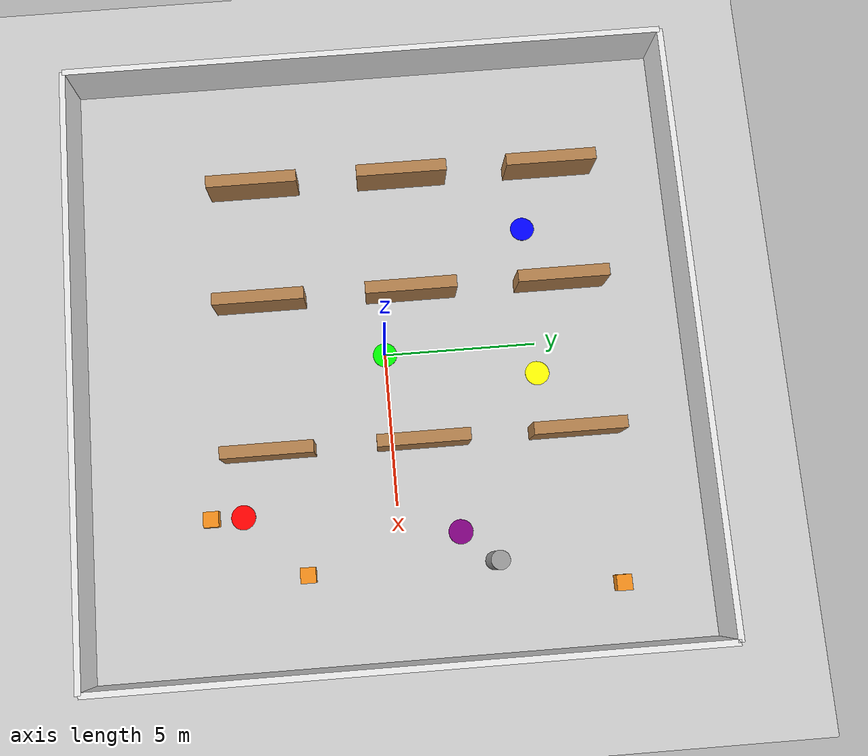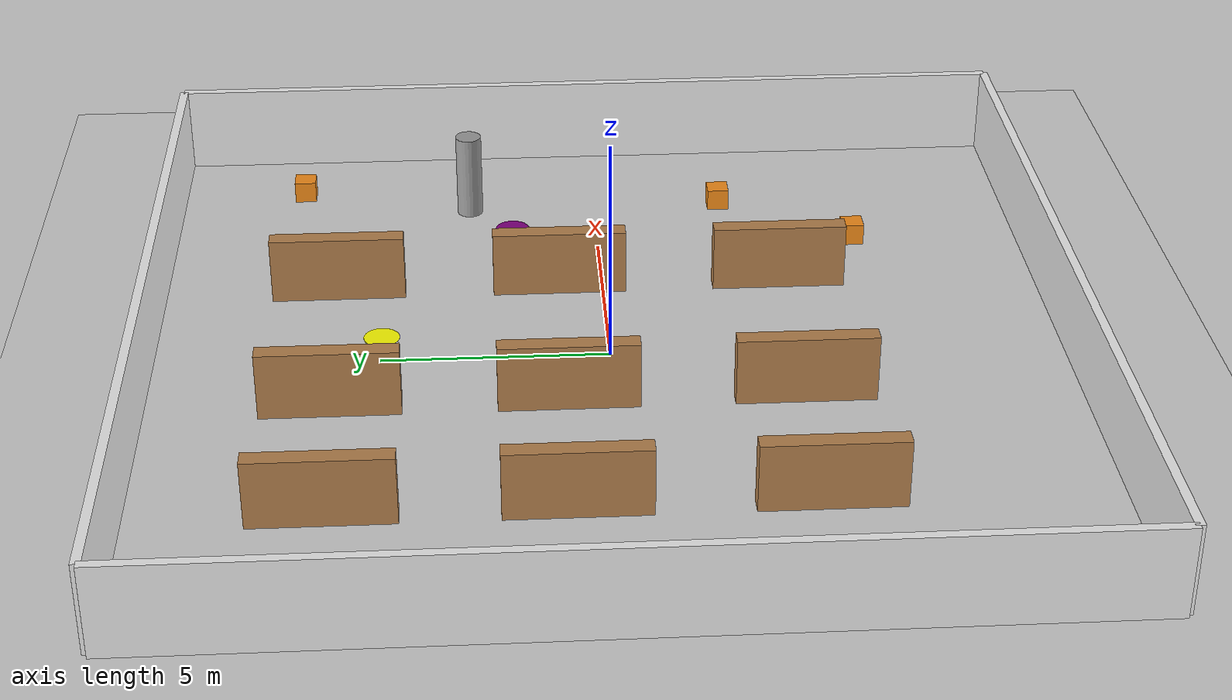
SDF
<?xml version="1.0" ?>
<sdf version="1.6">
  <world name="warehouse_world">

    <!-- Physics -->
    <physics type="ode">
      <real_time_update_rate>1000.0</real_time_update_rate>
      <max_step_size>0.001</max_step_size>
      <real_time_factor>1</real_time_factor>
    </physics>

    <!-- Plugins -->
    <plugin name="gazebo_ros_state" filename="libgazebo_ros_state.so">
      <ros>
        <namespace>/</namespace>
      </ros>
      <update_rate>1.0</update_rate>
    </plugin>

    <!-- Lighting -->
    <light name="sun" type="directional">
      <cast_shadows>true</cast_shadows>
      <pose>0 0 10 0 0 0</pose>
      <diffuse>0.8 0.8 0.8 1</diffuse>
      <specular>0.2 0.2 0.2 1</specular>
      <attenuation>
        <range>1000</range>
        <constant>0.9</constant>
        <linear>0.01</linear>
        <quadratic>0.001</quadratic>
      </attenuation>
      <direction>-0.5 0.1 -0.9</direction>
    </light>

    <!-- Scene -->
    <scene>
      <ambient>0.4 0.4 0.4 1</ambient>
      <background>0.7 0.7 0.7 1</background>
      <shadows>true</shadows>
    </scene>

    <!-- Ground Plane -->
    <model name="ground_plane">
      <static>true</static>
      <link name="link">
        <collision name="collision">
          <geometry>
            <plane>
              <normal>0 0 1</normal>
              <size>50 50</size>
            </plane>
          </geometry>
          <surface>
            <friction>
              <ode>
                <mu>100</mu>
                <mu2>50</mu2>
              </ode>
            </friction>
          </surface>
        </collision>
        <visual name="visual">
          <cast_shadows>false</cast_shadows>
          <geometry>
            <plane>
              <normal>0 0 1</normal>
              <size>50 50</size>
            </plane>
          </geometry>
          <material>
            <script>
              <uri>file://media/materials/scripts/gazebo.material</uri>
              <name>Gazebo/Grey</name>
            </script>
          </material>
        </visual>
      </link>
    </model>

    <!-- Warehouse Outer Walls -->
    <!-- North Wall -->
    <model name="wall_north">
      <static>true</static>
      <pose>0 10 1 0 0 0</pose>
      <link name="link">
        <collision name="collision">
          <geometry><box><size>20 0.2 2</size></box></geometry>
        </collision>
        <visual name="visual">
          <geometry><box><size>20 0.2 2</size></box></geometry>
          <material><script><uri>file://media/materials/scripts/gazebo.material</uri><name>Gazebo/White</name></script></material>
        </visual>
      </link>
    </model>

    <!-- South Wall -->
    <model name="wall_south">
      <static>true</static>
      <pose>0 -10 1 0 0 0</pose>
      <link name="link">
        <collision name="collision">
          <geometry><box><size>20 0.2 2</size></box></geometry>
        </collision>
        <visual name="visual">
          <geometry><box><size>20 0.2 2</size></box></geometry>
          <material><script><uri>file://media/materials/scripts/gazebo.material</uri><name>Gazebo/White</name></script></material>
        </visual>
      </link>
    </model>

    <!-- East Wall -->
    <model name="wall_east">
      <static>true</static>
      <pose>10 0 1 0 0 1.5708</pose>
      <link name="link">
        <collision name="collision">
          <geometry><box><size>20 0.2 2</size></box></geometry>
        </collision>
        <visual name="visual">
          <geometry><box><size>20 0.2 2</size></box></geometry>
          <material><script><uri>file://media/materials/scripts/gazebo.material</uri><name>Gazebo/White</name></script></material>
        </visual>
      </link>
    </model>

    <!-- West Wall -->
    <model name="wall_west">
      <static>true</static>
      <pose>-10 0 1 0 0 1.5708</pose>
      <link name="link">
        <collision name="collision">
          <geometry><box><size>20 0.2 2</size></box></geometry>
        </collision>
        <visual name="visual">
          <geometry><box><size>20 0.2 2</size></box></geometry>
          <material><script><uri>file://media/materials/scripts/gazebo.material</uri><name>Gazebo/White</name></script></material>
        </visual>
      </link>
    </model>

    <!-- Shelf Row 1 (left side) -->
    <model name="shelf_1_1">
      <static>true</static>
      <pose>-6 6 0.75 0 0 0</pose>
      <link name="link">
        <collision name="collision">
          <geometry><box><size>0.4 3.0 1.5</size></box></geometry>
        </collision>
        <visual name="visual">
          <geometry><box><size>0.4 3.0 1.5</size></box></geometry>
          <material><script><uri>file://media/materials/scripts/gazebo.material</uri><name>Gazebo/Wood</name></script></material>
        </visual>
      </link>
    </model>

    <model name="shelf_1_2">
      <static>true</static>
      <pose>-6 1 0.75 0 0 0</pose>
      <link name="link">
        <collision name="collision">
          <geometry><box><size>0.4 3.0 1.5</size></box></geometry>
        </collision>
        <visual name="visual">
          <geometry><box><size>0.4 3.0 1.5</size></box></geometry>
          <material><script><uri>file://media/materials/scripts/gazebo.material</uri><name>Gazebo/Wood</name></script></material>
        </visual>
      </link>
    </model>

    <model name="shelf_1_3">
      <static>true</static>
      <pose>-6 -4 0.75 0 0 0</pose>
      <link name="link">
        <collision name="collision">
          <geometry><box><size>0.4 3.0 1.5</size></box></geometry>
        </collision>
        <visual name="visual">
          <geometry><box><size>0.4 3.0 1.5</size></box></geometry>
          <material><script><uri>file://media/materials/scripts/gazebo.material</uri><name>Gazebo/Wood</name></script></material>
        </visual>
      </link>
    </model>

    <!-- Shelf Row 2 (right side) -->
    <model name="shelf_2_1">
      <static>true</static>
      <pose>-2 6 0.75 0 0 0</pose>
      <link name="link">
        <collision name="collision">
          <geometry><box><size>0.4 3.0 1.5</size></box></geometry>
        </collision>
        <visual name="visual">
          <geometry><box><size>0.4 3.0 1.5</size></box></geometry>
          <material><script><uri>file://media/materials/scripts/gazebo.material</uri><name>Gazebo/Wood</name></script></material>
        </visual>
      </link>
    </model>

    <model name="shelf_2_2">
      <static>true</static>
      <pose>-2 1 0.75 0 0 0</pose>
      <link name="link">
        <collision name="collision">
          <geometry><box><size>0.4 3.0 1.5</size></box></geometry>
        </collision>
        <visual name="visual">
          <geometry><box><size>0.4 3.0 1.5</size></box></geometry>
          <material><script><uri>file://media/materials/scripts/gazebo.material</uri><name>Gazebo/Wood</name></script></material>
        </visual>
      </link>
    </model>

    <model name="shelf_2_3">
      <static>true</static>
      <pose>-2 -4 0.75 0 0 0</pose>
      <link name="link">
        <collision name="collision">
          <geometry><box><size>0.4 3.0 1.5</size></box></geometry>
        </collision>
        <visual name="visual">
          <geometry><box><size>0.4 3.0 1.5</size></box></geometry>
          <material><script><uri>file://media/materials/scripts/gazebo.material</uri><name>Gazebo/Wood</name></script></material>
        </visual>
      </link>
    </model>

    <!-- Shelf Row 3 -->
    <model name="shelf_3_1">
      <static>true</static>
      <pose>3 6 0.75 0 0 0</pose>
      <link name="link">
        <collision name="collision">
          <geometry><box><size>0.4 3.0 1.5</size></box></geometry>
        </collision>
        <visual name="visual">
          <geometry><box><size>0.4 3.0 1.5</size></box></geometry>
          <material><script><uri>file://media/materials/scripts/gazebo.material</uri><name>Gazebo/Wood</name></script></material>
        </visual>
      </link>
    </model>

    <model name="shelf_3_2">
      <static>true</static>
      <pose>3 1 0.75 0 0 0</pose>
      <link name="link">
        <collision name="collision">
          <geometry><box><size>0.4 3.0 1.5</size></box></geometry>
        </collision>
        <visual name="visual">
          <geometry><box><size>0.4 3.0 1.5</size></box></geometry>
          <material><script><uri>file://media/materials/scripts/gazebo.material</uri><name>Gazebo/Wood</name></script></material>
        </visual>
      </link>
    </model>

    <model name="shelf_3_3">
      <static>true</static>
      <pose>3 -4 0.75 0 0 0</pose>
      <link name="link">
        <collision name="collision">
          <geometry><box><size>0.4 3.0 1.5</size></box></geometry>
        </collision>
        <visual name="visual">
          <geometry><box><size>0.4 3.0 1.5</size></box></geometry>
          <material><script><uri>file://media/materials/scripts/gazebo.material</uri><name>Gazebo/Wood</name></script></material>
        </visual>
      </link>
    </model>

    <!-- Central Pillar / Obstacle -->
    <model name="pillar_center">
      <static>true</static>
      <pose>7 3 1 0 0 0</pose>
      <link name="link">
        <collision name="collision">
          <geometry><cylinder><radius>0.3</radius><length>2.0</length></cylinder></geometry>
        </collision>
        <visual name="visual">
          <geometry><cylinder><radius>0.3</radius><length>2.0</length></cylinder></geometry>
          <material><script><uri>file://media/materials/scripts/gazebo.material</uri><name>Gazebo/Grey</name></script></material>
        </visual>
      </link>
    </model>

    <!-- Random box obstacles -->
    <model name="box_obstacle_1">
      <static>true</static>
      <pose>5 -6 0.25 0 0 0</pose>
      <link name="link">
        <collision name="collision">
          <geometry><box><size>0.5 0.5 0.5</size></box></geometry>
        </collision>
        <visual name="visual">
          <geometry><box><size>0.5 0.5 0.5</size></box></geometry>
          <material><script><uri>file://media/materials/scripts/gazebo.material</uri><name>Gazebo/Orange</name></script></material>
        </visual>
      </link>
    </model>

    <model name="box_obstacle_2">
      <static>true</static>
      <pose>7 -3 0.25 0 0 0</pose>
      <link name="link">
        <collision name="collision">
          <geometry><box><size>0.5 0.5 0.5</size></box></geometry>
        </collision>
        <visual name="visual">
          <geometry><box><size>0.5 0.5 0.5</size></box></geometry>
          <material><script><uri>file://media/materials/scripts/gazebo.material</uri><name>Gazebo/Orange</name></script></material>
        </visual>
      </link>
    </model>

    <model name="box_obstacle_3">
      <static>true</static>
      <pose>8 7 0.25 0 0 0</pose>
      <link name="link">
        <collision name="collision">
          <geometry><box><size>0.5 0.5 0.5</size></box></geometry>
        </collision>
        <visual name="visual">
          <geometry><box><size>0.5 0.5 0.5</size></box></geometry>
          <material><script><uri>file://media/materials/scripts/gazebo.material</uri><name>Gazebo/Orange</name></script></material>
        </visual>
      </link>
    </model>

    <!-- Zone A: Green, Position (0, 0) -->
    <model name="zone_A">
      <static>true</static>
      <pose>0 0 0.015 0 0 0</pose>
      <link name="link">
        <collision name="collision">
          <geometry>
            <cylinder>
              <radius>0.4</radius>
              <length>0.01</length>
            </cylinder>
          </geometry>
        </collision>
        <visual name="visual">
          <geometry>
            <cylinder>
              <radius>0.4</radius>
              <length>0.01</length>
            </cylinder>
          </geometry>
          <material>
            <ambient>0 1 0 1</ambient>
            <diffuse>0 1 0 1</diffuse>
            <specular>0 0.1 0 1</specular>
          </material>
        </visual>
      </link>
    </model>

    <!-- Zone B: Blue, Position (-4, 5) -->
    <model name="zone_B">
      <static>true</static>
      <pose>-4 5 0.015 0 0 0</pose>
      <link name="link">
        <collision name="collision">
          <geometry>
            <cylinder>
              <radius>0.4</radius>
              <length>0.01</length>
            </cylinder>
          </geometry>
        </collision>
        <visual name="visual">
          <geometry>
            <cylinder>
              <radius>0.4</radius>
              <length>0.01</length>
            </cylinder>
          </geometry>
          <material>
            <ambient>0 0 1 1</ambient>
            <diffuse>0 0 1 1</diffuse>
            <specular>0 0 0.1 1</specular>
          </material>
        </visual>
      </link>
    </model>

    <!-- Zone C: Yellow, Position (1, 5) -->
    <model name="zone_C">
      <static>true</static>
      <pose>1 5 0.015 0 0 0</pose>
      <link name="link">
        <collision name="collision">
          <geometry>
            <cylinder>
              <radius>0.4</radius>
              <length>0.01</length>
            </cylinder>
          </geometry>
        </collision>
        <visual name="visual">
          <geometry>
            <cylinder>
              <radius>0.4</radius>
              <length>0.01</length>
            </cylinder>
          </geometry>
          <material>
            <ambient>1 1 0 1</ambient>
            <diffuse>1 1 0 1</diffuse>
            <specular>0.1 0.1 0 1</specular>
          </material>
        </visual>
      </link>
    </model>

    <!-- Zone D: Red, Position (5, -5) -->
    <model name="zone_D">
      <static>true</static>
      <pose>5 -5 0.015 0 0 0</pose>
      <link name="link">
        <collision name="collision">
          <geometry>
            <cylinder>
              <radius>0.4</radius>
              <length>0.01</length>
            </cylinder>
          </geometry>
        </collision>
        <visual name="visual">
          <geometry>
            <cylinder>
              <radius>0.4</radius>
              <length>0.01</length>
            </cylinder>
          </geometry>
          <material>
            <ambient>1 0 0 1</ambient>
            <diffuse>1 0 0 1</diffuse>
            <specular>0.1 0 0 1</specular>
          </material>
        </visual>
      </link>
    </model>

    <!-- Zone E: Purple, Position (6, 2) -->
    <model name="zone_E">
      <static>true</static>
      <pose>6 2 0.015 0 0 0</pose>
      <link name="link">
        <collision name="collision">
          <geometry>
            <cylinder>
              <radius>0.4</radius>
              <length>0.01</length>
            </cylinder>
          </geometry>
        </collision>
        <visual name="visual">
          <geometry>
            <cylinder>
              <radius>0.4</radius>
              <length>0.01</length>
            </cylinder>
          </geometry>
          <material>
            <ambient>0.5 0 0.5 1</ambient>
            <diffuse>0.5 0 0.5 1</diffuse>
            <specular>0.05 0 0.05 1</specular>
          </material>
        </visual>
      </link>
    </model>

  </world>
</sdf>
